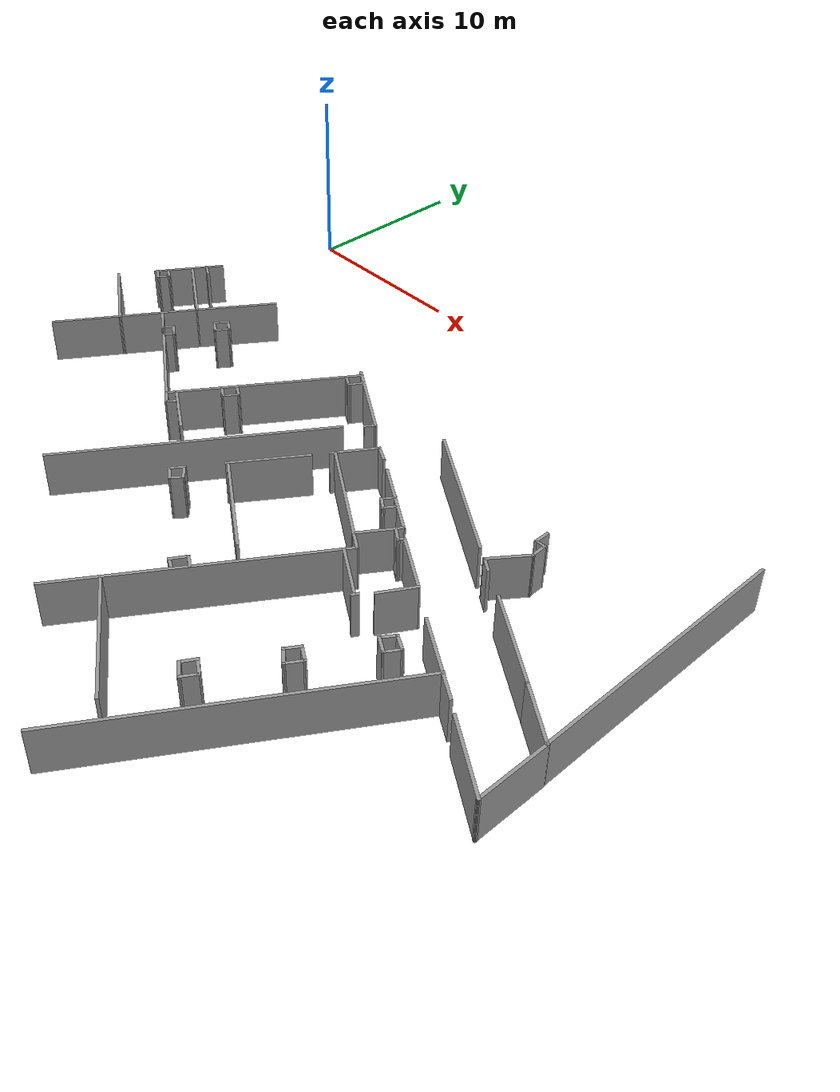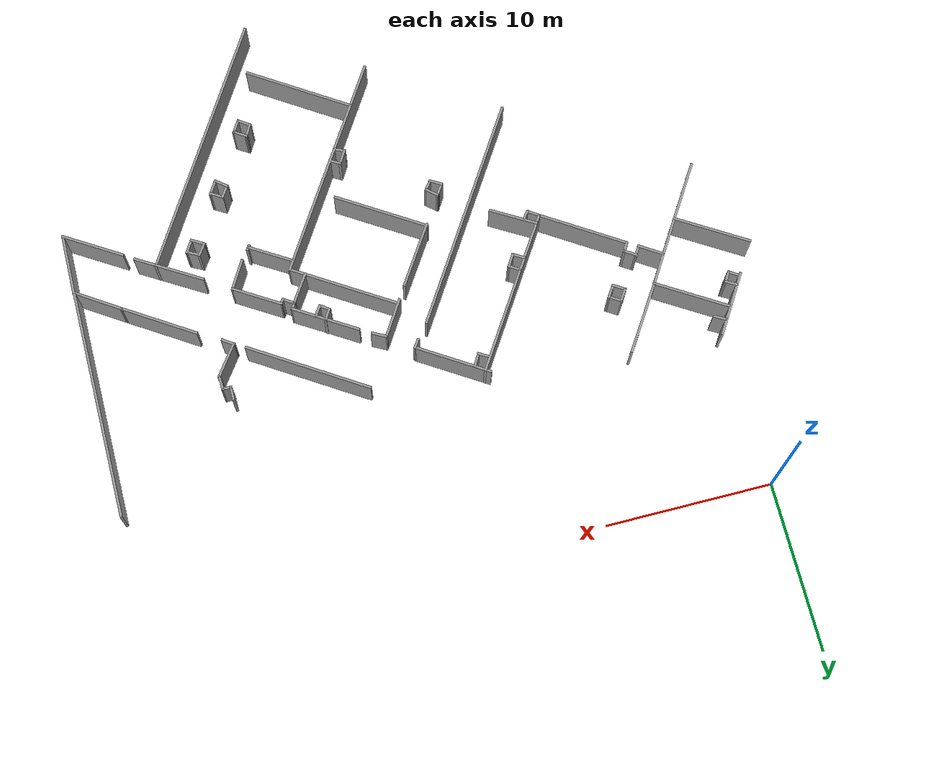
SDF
<sdf version="1.7">
 <model name="HopperFloorGround_Full">
  <pose>0.395792 0.11413 0 0 -0 0</pose>
  <link name="Wall_1">
   <collision name="Wall_1_Collision">
    <geometry><box><size>16.3063 0.15 2.5</size></box></geometry>
    <pose>0 0 1.25 0 -0 0</pose>
   </collision>
   <visual name="Wall_1_Visual">
    <pose>0 0 1.25 0 -0 0</pose>
    <geometry><box><size>16.3063 0.15 2.5</size></box></geometry>
    <material>
     <script><uri>file://media/materials/scripts/gazebo.material</uri><name>Gazebo/Grey</name></script>
     <ambient>1 1 1 1</ambient>
    </material>
    <meta><layer>0</layer></meta>
   </visual>
   <pose>27.2284 -28.2428 0 0 -0 1.02013</pose>
  </link>
  <link name="Wall_10">
   <collision name="Wall_10_Collision">
    <geometry><box><size>0.518953 0.15 2.5</size></box></geometry>
    <pose>0 0 1.25 0 -0 0</pose>
   </collision>
   <visual name="Wall_10_Visual">
    <pose>0 0 1.25 0 -0 0</pose>
    <geometry><box><size>0.518953 0.15 2.5</size></box></geometry>
    <material>
     <script><uri>file://media/materials/scripts/gazebo.material</uri><name>Gazebo/Grey</name></script>
     <ambient>1 1 1 1</ambient>
    </material>
    <meta><layer>0</layer></meta>
   </visual>
   <pose>24.1583 -16.8971 0 0 -0 1.02225</pose>
  </link>
  <link name="Wall_12">
   <collision name="Wall_12_Collision">
    <geometry><box><size>4.26067 0.15 2.5</size></box></geometry>
    <pose>0 0 1.25 0 -0 0</pose>
   </collision>
   <visual name="Wall_12_Visual">
    <pose>0 0 1.25 0 -0 0</pose>
    <geometry><box><size>4.26067 0.15 2.5</size></box></geometry>
    <material>
     <script><uri>file://media/materials/scripts/gazebo.material</uri><name>Gazebo/Grey</name></script>
     <ambient>1 1 1 1</ambient>
    </material>
    <meta><layer>0</layer></meta>
   </visual>
   <pose>22.5135 -15.6473 0 0 -0 2.58124</pose>
  </link>
  <link name="Wall_14">
   <collision name="Wall_14_Collision">
    <geometry><box><size>1.0029 0.15 2.5</size></box></geometry>
    <pose>0 0 1.25 0 -0 0</pose>
   </collision>
   <visual name="Wall_14_Visual">
    <pose>0 0 1.25 0 -0 0</pose>
    <geometry><box><size>1.0029 0.15 2.5</size></box></geometry>
    <material>
     <script><uri>file://media/materials/scripts/gazebo.material</uri><name>Gazebo/Grey</name></script>
     <ambient>1 1 1 1</ambient>
    </material>
    <meta><layer>0</layer></meta>
   </visual>
   <pose>19.6794 -13.9165 0 0 -0 2.65043</pose>
  </link>
  <link name="Wall_15">
   <collision name="Wall_15_Collision">
    <geometry><box><size>2.53238 0.15 2.5</size></box></geometry>
    <pose>0 0 1.25 0 -0 0</pose>
   </collision>
   <visual name="Wall_15_Visual">
    <pose>0 0 1.25 0 -0 0</pose>
    <geometry><box><size>2.53238 0.15 2.5</size></box></geometry>
    <material>
     <script><uri>file://media/materials/scripts/gazebo.material</uri><name>Gazebo/Grey</name></script>
     <ambient>1 1 1 1</ambient>
    </material>
    <meta><layer>0</layer></meta>
   </visual>
   <pose>18.665 -14.7211 0 0 -0 -2.1364</pose>
  </link>
  <link name="Wall_17">
   <collision name="Wall_17_Collision">
    <geometry><box><size>4.18126 0.15 2.5</size></box></geometry>
    <pose>0 0 1.25 0 -0 0</pose>
   </collision>
   <visual name="Wall_17_Visual">
    <pose>0 0 1.25 0 -0 0</pose>
    <geometry><box><size>4.18126 0.15 2.5</size></box></geometry>
    <material>
     <script><uri>file://media/materials/scripts/gazebo.material</uri><name>Gazebo/Grey</name></script>
     <ambient>1 1 1 1</ambient>
    </material>
    <meta><layer>0</layer></meta>
   </visual>
   <pose>16.4 -18.2366 0 0 -0 -2.14917</pose>
  </link>
  <link name="Wall_18">
   <collision name="Wall_18_Collision">
    <geometry><box><size>5.9215 0.15 2.5</size></box></geometry>
    <pose>0 0 1.25 0 -0 0</pose>
   </collision>
   <visual name="Wall_18_Visual">
    <pose>0 0 1.25 0 -0 0</pose>
    <geometry><box><size>5.9215 0.15 2.5</size></box></geometry>
    <material>
     <script><uri>file://media/materials/scripts/gazebo.material</uri><name>Gazebo/Grey</name></script>
     <ambient>1 1 1 1</ambient>
    </material>
    <meta><layer>0</layer></meta>
   </visual>
   <pose>17.7293 -21.3954 0 0 -0 -0.568971</pose>
  </link>
  <link name="Wall_181">
   <collision name="Wall_181_Collision">
    <geometry><box><size>4.06223 0.15 2.5</size></box></geometry>
    <pose>0 0 1.25 0 -0 0</pose>
   </collision>
   <visual name="Wall_181_Visual">
    <pose>0 0 1.25 0 -0 0</pose>
    <geometry><box><size>4.06223 0.15 2.5</size></box></geometry>
    <material>
     <script><uri>file://media/materials/scripts/gazebo.material</uri><name>Gazebo/Grey</name></script>
     <ambient>1 1 1 1</ambient>
    </material>
    <meta><layer>0</layer></meta>
   </visual>
   <pose>-0.852842 -10.6822 0 0 -0 -2.13603</pose>
  </link>
  <link name="Wall_186">
   <collision name="Wall_186_Collision">
    <geometry><box><size>0.814062 0.15 2.5</size></box></geometry>
    <pose>0 0 1.25 0 -0 0</pose>
   </collision>
   <visual name="Wall_186_Visual">
    <pose>0 0 1.25 0 -0 0</pose>
    <geometry><box><size>0.814062 0.15 2.5</size></box></geometry>
    <material>
     <script><uri>file://media/materials/scripts/gazebo.material</uri><name>Gazebo/Grey</name></script>
     <ambient>1 1 1 1</ambient>
    </material>
    <meta><layer>0</layer></meta>
   </visual>
   <pose>0.057217 -9.98631 0 0 -0 2.63673</pose>
  </link>
  <link name="Wall_188">
   <collision name="Wall_188_Collision">
    <geometry><box><size>0.777845 0.15 2.5</size></box></geometry>
    <pose>0 0 1.25 0 -0 0</pose>
   </collision>
   <visual name="Wall_188_Visual">
    <pose>0 0 1.25 0 -0 0</pose>
    <geometry><box><size>0.777845 0.15 2.5</size></box></geometry>
    <material>
     <script><uri>file://media/materials/scripts/gazebo.material</uri><name>Gazebo/Grey</name></script>
     <ambient>1 1 1 1</ambient>
    </material>
    <meta><layer>0</layer></meta>
   </visual>
   <pose>-1.51818 -12.4182 0 0 -0 -0.594759</pose>
  </link>
  <link name="Wall_189">
   <collision name="Wall_189_Collision">
    <geometry><box><size>0.790571 0.15 2.5</size></box></geometry>
    <pose>0 0 1.25 0 -0 0</pose>
   </collision>
   <visual name="Wall_189_Visual">
    <pose>0 0 1.25 0 -0 0</pose>
    <geometry><box><size>0.790571 0.15 2.5</size></box></geometry>
    <material>
     <script><uri>file://media/materials/scripts/gazebo.material</uri><name>Gazebo/Grey</name></script>
     <ambient>1 1 1 1</ambient>
    </material>
    <meta><layer>0</layer></meta>
   </visual>
   <pose>-1.08227 -12.3265 0 0 -0 0.989416</pose>
  </link>
  <link name="Wall_190">
   <collision name="Wall_190_Collision">
    <geometry><box><size>0.800717 0.15 2.5</size></box></geometry>
    <pose>0 0 1.25 0 -0 0</pose>
   </collision>
   <visual name="Wall_190_Visual">
    <pose>0 0 1.25 0 -0 0</pose>
    <geometry><box><size>0.800717 0.15 2.5</size></box></geometry>
    <material>
     <script><uri>file://media/materials/scripts/gazebo.material</uri><name>Gazebo/Grey</name></script>
     <ambient>1 1 1 1</ambient>
    </material>
    <meta><layer>0</layer></meta>
   </visual>
   <pose>-1.18934 -11.8982 0 0 -0 2.62536</pose>
  </link>
  <link name="Wall_194">
   <collision name="Wall_194_Collision">
    <geometry><box><size>4.81119 0.15 2.5</size></box></geometry>
    <pose>0 0 1.25 0 -0 0</pose>
   </collision>
   <visual name="Wall_194_Visual">
    <pose>0 0 1.25 0 -0 0</pose>
    <geometry><box><size>4.81119 0.15 2.5</size></box></geometry>
    <material>
     <script><uri>file://media/materials/scripts/gazebo.material</uri><name>Gazebo/Grey</name></script>
     <ambient>1 1 1 1</ambient>
    </material>
    <meta><layer>0</layer></meta>
   </visual>
   <pose>-1.07731 -15.393 0 0 -0 -0.556599</pose>
  </link>
  <link name="Wall_195">
   <collision name="Wall_195_Collision">
    <geometry><box><size>4.45886 0.15 2.5</size></box></geometry>
    <pose>0 0 1.25 0 -0 0</pose>
   </collision>
   <visual name="Wall_195_Visual">
    <pose>0 0 1.25 0 -0 0</pose>
    <geometry><box><size>4.45886 0.15 2.5</size></box></geometry>
    <material>
     <script><uri>file://media/materials/scripts/gazebo.material</uri><name>Gazebo/Grey</name></script>
     <ambient>1 1 1 1</ambient>
    </material>
    <meta><layer>0</layer></meta>
   </visual>
   <pose>2.0536 -14.8038 0 0 -0 1.00657</pose>
  </link>
  <link name="Wall_196">
   <collision name="Wall_196_Collision">
    <geometry><box><size>4.73287 0.15 2.5</size></box></geometry>
    <pose>0 0 1.25 0 -0 0</pose>
   </collision>
   <visual name="Wall_196_Visual">
    <pose>0 0 1.25 0 -0 0</pose>
    <geometry><box><size>4.73287 0.15 2.5</size></box></geometry>
    <material>
     <script><uri>file://media/materials/scripts/gazebo.material</uri><name>Gazebo/Grey</name></script>
     <ambient>1 1 1 1</ambient>
    </material>
    <meta><layer>0</layer></meta>
   </visual>
   <pose>1.26208 -11.7696 0 0 -0 2.5834</pose>
  </link>
  <link name="Wall_198">
   <collision name="Wall_198_Collision">
    <geometry><box><size>4.56994 0.15 2.5</size></box></geometry>
    <pose>0 0 1.25 0 -0 0</pose>
   </collision>
   <visual name="Wall_198_Visual">
    <pose>0 0 1.25 0 -0 0</pose>
    <geometry><box><size>4.56994 0.15 2.5</size></box></geometry>
    <material>
     <script><uri>file://media/materials/scripts/gazebo.material</uri><name>Gazebo/Grey</name></script>
     <ambient>1 1 1 1</ambient>
    </material>
    <meta><layer>0</layer></meta>
   </visual>
   <pose>4.41937 -11.1364 0 0 -0 0.989416</pose>
  </link>
  <link name="Wall_20">
   <collision name="Wall_20_Collision">
    <geometry><box><size>13.9697 0.15 2.5</size></box></geometry>
    <pose>0 0 1.25 0 -0 0</pose>
   </collision>
   <visual name="Wall_20_Visual">
    <pose>0 0 1.25 0 -0 0</pose>
    <geometry><box><size>13.9697 0.15 2.5</size></box></geometry>
    <material>
     <script><uri>file://media/materials/scripts/gazebo.material</uri><name>Gazebo/Grey</name></script>
     <ambient>1 1 1 1</ambient>
    </material>
    <meta><layer>0</layer></meta>
   </visual>
   <pose>20.145 -25.001 0 0 -0 1.0068</pose>
  </link>
  <link name="Wall_204">
   <collision name="Wall_204_Collision">
    <geometry><box><size>0.886657 0.15 2.5</size></box></geometry>
    <pose>0 0 1.25 0 -0 0</pose>
   </collision>
   <visual name="Wall_204_Visual">
    <pose>0 0 1.25 0 -0 0</pose>
    <geometry><box><size>0.886657 0.15 2.5</size></box></geometry>
    <material>
     <script><uri>file://media/materials/scripts/gazebo.material</uri><name>Gazebo/Grey</name></script>
     <ambient>1 1 1 1</ambient>
    </material>
    <meta><layer>0</layer></meta>
   </visual>
   <pose>5.18451 -12.7458 0 0 -0 0.989416</pose>
  </link>
  <link name="Wall_205">
   <collision name="Wall_205_Collision">
    <geometry><box><size>0.901419 0.15 2.5</size></box></geometry>
    <pose>0 0 1.25 0 -0 0</pose>
   </collision>
   <visual name="Wall_205_Visual">
    <pose>0 0 1.25 0 -0 0</pose>
    <geometry><box><size>0.901419 0.15 2.5</size></box></geometry>
    <material>
     <script><uri>file://media/materials/scripts/gazebo.material</uri><name>Gazebo/Grey</name></script>
     <ambient>1 1 1 1</ambient>
    </material>
    <meta><layer>0</layer></meta>
   </visual>
   <pose>5.7034 -12.6403 0 0 -0 -0.568525</pose>
  </link>
  <link name="Wall_206">
   <collision name="Wall_206_Collision">
    <geometry><box><size>0.911033 0.15 2.5</size></box></geometry>
    <pose>0 0 1.25 0 -0 0</pose>
   </collision>
   <visual name="Wall_206_Visual">
    <pose>0 0 1.25 0 -0 0</pose>
    <geometry><box><size>0.911033 0.15 2.5</size></box></geometry>
    <material>
     <script><uri>file://media/materials/scripts/gazebo.material</uri><name>Gazebo/Grey</name></script>
     <ambient>1 1 1 1</ambient>
    </material>
    <meta><layer>0</layer></meta>
   </visual>
   <pose>5.80893 -13.1592 0 0 -0 -2.1588</pose>
  </link>
  <link name="Wall_207">
   <collision name="Wall_207_Collision">
    <geometry><box><size>0.901419 0.15 2.5</size></box></geometry>
    <pose>0 0 1.25 0 -0 0</pose>
   </collision>
   <visual name="Wall_207_Visual">
    <pose>0 0 1.25 0 -0 0</pose>
    <geometry><box><size>0.901419 0.15 2.5</size></box></geometry>
    <material>
     <script><uri>file://media/materials/scripts/gazebo.material</uri><name>Gazebo/Grey</name></script>
     <ambient>1 1 1 1</ambient>
    </material>
    <meta><layer>0</layer></meta>
   </visual>
   <pose>5.28125 -13.2735 0 0 -0 2.57307</pose>
  </link>
  <link name="Wall_209">
   <collision name="Wall_209_Collision">
    <geometry><box><size>1.66238 0.15 2.5</size></box></geometry>
    <pose>0 0 1.25 0 -0 0</pose>
   </collision>
   <visual name="Wall_209_Visual">
    <pose>0 0 1.25 0 -0 0</pose>
    <geometry><box><size>1.66238 0.15 2.5</size></box></geometry>
    <material>
     <script><uri>file://media/materials/scripts/gazebo.material</uri><name>Gazebo/Grey</name></script>
     <ambient>1 1 1 1</ambient>
    </material>
    <meta><layer>0</layer></meta>
   </visual>
   <pose>2.81874 -15.0676 0 0 -0 -0.578325</pose>
  </link>
  <link name="Wall_21">
   <collision name="Wall_21_Collision">
    <geometry><box><size>6.82507 0.15 2.5</size></box></geometry>
    <pose>0 0 1.25 0 -0 0</pose>
   </collision>
   <visual name="Wall_21_Visual">
    <pose>0 0 1.25 0 -0 0</pose>
    <geometry><box><size>6.82507 0.15 2.5</size></box></geometry>
    <material>
     <script><uri>file://media/materials/scripts/gazebo.material</uri><name>Gazebo/Grey</name></script>
     <ambient>1 1 1 1</ambient>
    </material>
    <meta><layer>0</layer></meta>
   </visual>
   <pose>21.0245 -17.3672 0 0 -0 2.57405</pose>
  </link>
  <link name="Wall_210">
   <collision name="Wall_210_Collision">
    <geometry><box><size>0.72617 0.15 2.5</size></box></geometry>
    <pose>0 0 1.25 0 -0 0</pose>
   </collision>
   <visual name="Wall_210_Visual">
    <pose>0 0 1.25 0 -0 0</pose>
    <geometry><box><size>0.72617 0.15 2.5</size></box></geometry>
    <material>
     <script><uri>file://media/materials/scripts/gazebo.material</uri><name>Gazebo/Grey</name></script>
     <ambient>1 1 1 1</ambient>
    </material>
    <meta><layer>0</layer></meta>
   </visual>
   <pose>3.60147 -15.2347 0 0 -0 1.02514</pose>
  </link>
  <link name="Wall_211">
   <collision name="Wall_211_Collision">
    <geometry><box><size>0.877146 0.15 2.5</size></box></geometry>
    <pose>0 0 1.25 0 -0 0</pose>
   </collision>
   <visual name="Wall_211_Visual">
    <pose>0 0 1.25 0 -0 0</pose>
    <geometry><box><size>0.877146 0.15 2.5</size></box></geometry>
    <material>
     <script><uri>file://media/materials/scripts/gazebo.material</uri><name>Gazebo/Grey</name></script>
     <ambient>1 1 1 1</ambient>
    </material>
    <meta><layer>0</layer></meta>
   </visual>
   <pose>4.05879 -15.182 0 0 -0 -0.561163</pose>
  </link>
  <link name="Wall_212">
   <collision name="Wall_212_Collision">
    <geometry><box><size>0.711209 0.15 2.5</size></box></geometry>
    <pose>0 0 1.25 0 -0 0</pose>
   </collision>
   <visual name="Wall_212_Visual">
    <pose>0 0 1.25 0 -0 0</pose>
    <geometry><box><size>0.711209 0.15 2.5</size></box></geometry>
    <material>
     <script><uri>file://media/materials/scripts/gazebo.material</uri><name>Gazebo/Grey</name></script>
     <ambient>1 1 1 1</ambient>
    </material>
    <meta><layer>0</layer></meta>
   </visual>
   <pose>4.2171 -15.6129 0 0 -0 -2.13272</pose>
  </link>
  <link name="Wall_213">
   <collision name="Wall_213_Collision">
    <geometry><box><size>5.6192 0.15 2.5</size></box></geometry>
    <pose>0 0 1.25 0 -0 0</pose>
   </collision>
   <visual name="Wall_213_Visual">
    <pose>0 0 1.25 0 -0 0</pose>
    <geometry><box><size>5.6192 0.15 2.5</size></box></geometry>
    <material>
     <script><uri>file://media/materials/scripts/gazebo.material</uri><name>Gazebo/Grey</name></script>
     <ambient>1 1 1 1</ambient>
    </material>
    <meta><layer>0</layer></meta>
   </visual>
   <pose>6.363 -17.3367 0 0 -0 -0.574623</pose>
  </link>
  <link name="Wall_214">
   <collision name="Wall_214_Collision">
    <geometry><box><size>10.3075 0.15 2.5</size></box></geometry>
    <pose>0 0 1.25 0 -0 0</pose>
   </collision>
   <visual name="Wall_214_Visual">
    <pose>0 0 1.25 0 -0 0</pose>
    <geometry><box><size>10.3075 0.15 2.5</size></box></geometry>
    <material>
     <script><uri>file://media/materials/scripts/gazebo.material</uri><name>Gazebo/Grey</name></script>
     <ambient>1 1 1 1</ambient>
    </material>
    <meta><layer>0</layer></meta>
   </visual>
   <pose>11.4287 -14.5663 0 0 -0 0.99384</pose>
  </link>
  <link name="Wall_217">
   <collision name="Wall_217_Collision">
    <geometry><box><size>4.78533 0.15 2.5</size></box></geometry>
    <pose>0 0 1.25 0 -0 0</pose>
   </collision>
   <visual name="Wall_217_Visual">
    <pose>0 0 1.25 0 -0 0</pose>
    <geometry><box><size>4.78533 0.15 2.5</size></box></geometry>
    <material>
     <script><uri>file://media/materials/scripts/gazebo.material</uri><name>Gazebo/Grey</name></script>
     <ambient>1 1 1 1</ambient>
    </material>
    <meta><layer>0</layer></meta>
   </visual>
   <pose>15.8877 -11.4003 0 0 -0 -0.569058</pose>
  </link>
  <link name="Wall_219">
   <collision name="Wall_219_Collision">
    <geometry><box><size>0.657355 0.15 2.5</size></box></geometry>
    <pose>0 0 1.25 0 -0 0</pose>
   </collision>
   <visual name="Wall_219_Visual">
    <pose>0 0 1.25 0 -0 0</pose>
    <geometry><box><size>0.657355 0.15 2.5</size></box></geometry>
    <material>
     <script><uri>file://media/materials/scripts/gazebo.material</uri><name>Gazebo/Grey</name></script>
     <ambient>1 1 1 1</ambient>
    </material>
    <meta><layer>0</layer></meta>
   </visual>
   <pose>17.6994 -12.8602 0 0 -0 -2.1588</pose>
  </link>
  <link name="Wall_221">
   <collision name="Wall_221_Collision">
    <geometry><box><size>0.922332 0.15 2.5</size></box></geometry>
    <pose>0 0 1.25 0 -0 0</pose>
   </collision>
   <visual name="Wall_221_Visual">
    <pose>0 0 1.25 0 -0 0</pose>
    <geometry><box><size>0.922332 0.15 2.5</size></box></geometry>
    <material>
     <script><uri>file://media/materials/scripts/gazebo.material</uri><name>Gazebo/Grey</name></script>
     <ambient>1 1 1 1</ambient>
    </material>
    <meta><layer>0</layer></meta>
   </visual>
   <pose>14.5509 -11.0309 0 0 -0 -2.09559</pose>
  </link>
  <link name="Wall_222">
   <collision name="Wall_222_Collision">
    <geometry><box><size>0.843834 0.15 2.5</size></box></geometry>
    <pose>0 0 1.25 0 -0 0</pose>
   </collision>
   <visual name="Wall_222_Visual">
    <pose>0 0 1.25 0 -0 0</pose>
    <geometry><box><size>0.843834 0.15 2.5</size></box></geometry>
    <material>
     <script><uri>file://media/materials/scripts/gazebo.material</uri><name>Gazebo/Grey</name></script>
     <ambient>1 1 1 1</ambient>
    </material>
    <meta><layer>0</layer></meta>
   </visual>
   <pose>14.0584 -11.1892 0 0 -0 2.60987</pose>
  </link>
  <link name="Wall_224">
   <collision name="Wall_224_Collision">
    <geometry><box><size>0.804599 0.15 2.5</size></box></geometry>
    <pose>0 0 1.25 0 -0 0</pose>
   </collision>
   <visual name="Wall_224_Visual">
    <pose>0 0 1.25 0 -0 0</pose>
    <geometry><box><size>0.804599 0.15 2.5</size></box></geometry>
    <material>
     <script><uri>file://media/materials/scripts/gazebo.material</uri><name>Gazebo/Grey</name></script>
     <ambient>1 1 1 1</ambient>
    </material>
    <meta><layer>0</layer></meta>
   </visual>
   <pose>10.9626 -15.9823 0 0 -0 -0.535811</pose>
  </link>
  <link name="Wall_225">
   <collision name="Wall_225_Collision">
    <geometry><box><size>0.940544 0.15 2.5</size></box></geometry>
    <pose>0 0 1.25 0 -0 0</pose>
   </collision>
   <visual name="Wall_225_Visual">
    <pose>0 0 1.25 0 -0 0</pose>
    <geometry><box><size>0.940544 0.15 2.5</size></box></geometry>
    <material>
     <script><uri>file://media/materials/scripts/gazebo.material</uri><name>Gazebo/Grey</name></script>
     <ambient>1 1 1 1</ambient>
    </material>
    <meta><layer>0</layer></meta>
   </visual>
   <pose>11.033 -16.4836 0 0 -0 -2.13411</pose>
  </link>
  <link name="Wall_226">
   <collision name="Wall_226_Collision">
    <geometry><box><size>0.828731 0.15 2.5</size></box></geometry>
    <pose>0 0 1.25 0 -0 0</pose>
   </collision>
   <visual name="Wall_226_Visual">
    <pose>0 0 1.25 0 -0 0</pose>
    <geometry><box><size>0.828731 0.15 2.5</size></box></geometry>
    <material>
     <script><uri>file://media/materials/scripts/gazebo.material</uri><name>Gazebo/Grey</name></script>
     <ambient>1 1 1 1</ambient>
    </material>
    <meta><layer>0</layer></meta>
   </visual>
   <pose>10.5317 -16.6419 0 0 -0 2.59673</pose>
  </link>
  <link name="Wall_228">
   <collision name="Wall_228_Collision">
    <geometry><box><size>0.896462 0.15 2.5</size></box></geometry>
    <pose>0 0 1.25 0 -0 0</pose>
   </collision>
   <visual name="Wall_228_Visual">
    <pose>0 0 1.25 0 -0 0</pose>
    <geometry><box><size>0.896462 0.15 2.5</size></box></geometry>
    <material>
     <script><uri>file://media/materials/scripts/gazebo.material</uri><name>Gazebo/Grey</name></script>
     <ambient>1 1 1 1</ambient>
    </material>
    <meta><layer>0</layer></meta>
   </visual>
   <pose>8.96623 -19.034 0 0 -0 -0.601074</pose>
  </link>
  <link name="Wall_229">
   <collision name="Wall_229_Collision">
    <geometry><box><size>0.614373 0.15 2.5</size></box></geometry>
    <pose>0 0 1.25 0 -0 0</pose>
   </collision>
   <visual name="Wall_229_Visual">
    <pose>0 0 1.25 0 -0 0</pose>
    <geometry><box><size>0.614373 0.15 2.5</size></box></geometry>
    <material>
     <script><uri>file://media/materials/scripts/gazebo.material</uri><name>Gazebo/Grey</name></script>
     <ambient>1 1 1 1</ambient>
    </material>
    <meta><layer>0</layer></meta>
   </visual>
   <pose>9.41476 -19.0604 0 0 -0 0.91972</pose>
  </link>
  <link name="Wall_23">
   <collision name="Wall_23_Collision">
    <geometry><box><size>0.813752 0.15 2.5</size></box></geometry>
    <pose>0 0 1.25 0 -0 0</pose>
   </collision>
   <visual name="Wall_23_Visual">
    <pose>0 0 1.25 0 -0 0</pose>
    <geometry><box><size>0.813752 0.15 2.5</size></box></geometry>
    <material>
     <script><uri>file://media/materials/scripts/gazebo.material</uri><name>Gazebo/Grey</name></script>
     <ambient>1 1 1 1</ambient>
    </material>
    <meta><layer>0</layer></meta>
   </visual>
   <pose>22.3261 -15.8897 0 0 -0 -2.1294</pose>
  </link>
  <link name="Wall_231">
   <collision name="Wall_231_Collision">
    <geometry><box><size>2.98866 0.15 2.5</size></box></geometry>
    <pose>0 0 1.25 0 -0 0</pose>
   </collision>
   <visual name="Wall_231_Visual">
    <pose>0 0 1.25 0 -0 0</pose>
    <geometry><box><size>2.98866 0.15 2.5</size></box></geometry>
    <material>
     <script><uri>file://media/materials/scripts/gazebo.material</uri><name>Gazebo/Grey</name></script>
     <ambient>1 1 1 1</ambient>
    </material>
    <meta><layer>0</layer></meta>
   </visual>
   <pose>10.1799 -19.122 0 0 -0 -0.532981</pose>
  </link>
  <link name="Wall_233">
   <collision name="Wall_233_Collision">
    <geometry><box><size>14.5973 0.15 2.5</size></box></geometry>
    <pose>0 0 1.25 0 -0 0</pose>
   </collision>
   <visual name="Wall_233_Visual">
    <pose>0 0 1.25 0 -0 0</pose>
    <geometry><box><size>14.5973 0.15 2.5</size></box></geometry>
    <material>
     <script><uri>file://media/materials/scripts/gazebo.material</uri><name>Gazebo/Grey</name></script>
     <ambient>1 1 1 1</ambient>
    </material>
    <meta><layer>0</layer></meta>
   </visual>
   <pose>12.9141 -20.0381 0 0 -0 0.999331</pose>
  </link>
  <link name="Wall_235">
   <collision name="Wall_235_Collision">
    <geometry><box><size>0.883834 0.15 2.5</size></box></geometry>
    <pose>0 0 1.25 0 -0 0</pose>
   </collision>
   <visual name="Wall_235_Visual">
    <pose>0 0 1.25 0 -0 0</pose>
    <geometry><box><size>0.883834 0.15 2.5</size></box></geometry>
    <material>
     <script><uri>file://media/materials/scripts/gazebo.material</uri><name>Gazebo/Grey</name></script>
     <ambient>1 1 1 1</ambient>
    </material>
    <meta><layer>0</layer></meta>
   </visual>
   <pose>14.0063 -21.8993 0 0 -0 -2.14717</pose>
  </link>
  <link name="Wall_236">
   <collision name="Wall_236_Collision">
    <geometry><box><size>0.867532 0.15 2.5</size></box></geometry>
    <pose>0 0 1.25 0 -0 0</pose>
   </collision>
   <visual name="Wall_236_Visual">
    <pose>0 0 1.25 0 -0 0</pose>
    <geometry><box><size>0.867532 0.15 2.5</size></box></geometry>
    <material>
     <script><uri>file://media/materials/scripts/gazebo.material</uri><name>Gazebo/Grey</name></script>
     <ambient>1 1 1 1</ambient>
    </material>
    <meta><layer>0</layer></meta>
   </visual>
   <pose>14.1139 -22.3915 0 0 -0 -0.54042</pose>
  </link>
  <link name="Wall_237">
   <collision name="Wall_237_Collision">
    <geometry><box><size>0.765279 0.15 2.5</size></box></geometry>
    <pose>0 0 1.25 0 -0 0</pose>
   </collision>
   <visual name="Wall_237_Visual">
    <pose>0 0 1.25 0 -0 0</pose>
    <geometry><box><size>0.765279 0.15 2.5</size></box></geometry>
    <material>
     <script><uri>file://media/materials/scripts/gazebo.material</uri><name>Gazebo/Grey</name></script>
     <ambient>1 1 1 1</ambient>
    </material>
    <meta><layer>0</layer></meta>
   </visual>
   <pose>14.6062 -22.33 0 0 -0 0.927295</pose>
  </link>
  <link name="Wall_238">
   <collision name="Wall_238_Collision">
    <geometry><box><size>0.91416 0.15 2.5</size></box></geometry>
    <pose>0 0 1.25 0 -0 0</pose>
   </collision>
   <visual name="Wall_238_Visual">
    <pose>0 0 1.25 0 -0 0</pose>
    <geometry><box><size>0.91416 0.15 2.5</size></box></geometry>
    <material>
     <script><uri>file://media/materials/scripts/gazebo.material</uri><name>Gazebo/Grey</name></script>
     <ambient>1 1 1 1</ambient>
    </material>
    <meta><layer>0</layer></meta>
   </visual>
   <pose>14.4985 -21.8377 0 0 -0 2.4417</pose>
  </link>
  <link name="Wall_24">
   <collision name="Wall_24_Collision">
    <geometry><box><size>0.755238 0.15 2.5</size></box></geometry>
    <pose>0 0 1.25 0 -0 0</pose>
   </collision>
   <visual name="Wall_24_Visual">
    <pose>0 0 1.25 0 -0 0</pose>
    <geometry><box><size>0.755238 0.15 2.5</size></box></geometry>
    <material>
     <script><uri>file://media/materials/scripts/gazebo.material</uri><name>Gazebo/Grey</name></script>
     <ambient>1 1 1 1</ambient>
    </material>
    <meta><layer>0</layer></meta>
   </visual>
   <pose>22.3964 -16.347 0 0 -0 -0.620249</pose>
  </link>
  <link name="Wall_240">
   <collision name="Wall_240_Collision">
    <geometry><box><size>0.75 0.15 2.5</size></box></geometry>
    <pose>0 0 1.25 0 -0 0</pose>
   </collision>
   <visual name="Wall_240_Visual">
    <pose>0 0 1.25 0 -0 0</pose>
    <geometry><box><size>0.75 0.15 2.5</size></box></geometry>
    <material>
     <script><uri>file://media/materials/scripts/gazebo.material</uri><name>Gazebo/Grey</name></script>
     <ambient>1 1 1 1</ambient>
    </material>
    <meta><layer>0</layer></meta>
   </visual>
   <pose>19.6378 -25.1641 0 0 -0 2.61799</pose>
  </link>
  <link name="Wall_241">
   <collision name="Wall_241_Collision">
    <geometry><box><size>1 0.15 2.5</size></box></geometry>
    <pose>0 0 1.25 0 -0 0</pose>
   </collision>
   <visual name="Wall_241_Visual">
    <pose>0 0 1.25 0 -0 0</pose>
    <geometry><box><size>1 0.15 2.5</size></box></geometry>
    <material>
     <script><uri>file://media/materials/scripts/gazebo.material</uri><name>Gazebo/Grey</name></script>
     <ambient>1 1 1 1</ambient>
    </material>
    <meta><layer>0</layer></meta>
   </visual>
   <pose>19.1654 -25.3821 0 0 -0 -2.0944</pose>
  </link>
  <link name="Wall_242">
   <collision name="Wall_242_Collision">
    <geometry><box><size>0.745491 0.15 2.5</size></box></geometry>
    <pose>0 0 1.25 0 -0 0</pose>
   </collision>
   <visual name="Wall_242_Visual">
    <pose>0 0 1.25 0 -0 0</pose>
    <geometry><box><size>0.745491 0.15 2.5</size></box></geometry>
    <material>
     <script><uri>file://media/materials/scripts/gazebo.material</uri><name>Gazebo/Grey</name></script>
     <ambient>1 1 1 1</ambient>
    </material>
    <meta><layer>0</layer></meta>
   </visual>
   <pose>19.2253 -25.8705 0 0 -0 -0.416081</pose>
  </link>
  <link name="Wall_244">
   <collision name="Wall_244_Collision">
    <geometry><box><size>0.907395 0.15 2.5</size></box></geometry>
    <pose>0 0 1.25 0 -0 0</pose>
   </collision>
   <visual name="Wall_244_Visual">
    <pose>0 0 1.25 0 -0 0</pose>
    <geometry><box><size>0.907395 0.15 2.5</size></box></geometry>
    <material>
     <script><uri>file://media/materials/scripts/gazebo.material</uri><name>Gazebo/Grey</name></script>
     <ambient>1 1 1 1</ambient>
    </material>
    <meta><layer>0</layer></meta>
   </visual>
   <pose>28.621 -21.6812 0 0 -0 -2.16621</pose>
  </link>
  <link name="Wall_245">
   <collision name="Wall_245_Collision">
    <geometry><box><size>0.947909 0.15 2.5</size></box></geometry>
    <pose>0 0 1.25 0 -0 0</pose>
   </collision>
   <visual name="Wall_245_Visual">
    <pose>0 0 1.25 0 -0 0</pose>
    <geometry><box><size>0.947909 0.15 2.5</size></box></geometry>
    <material>
     <script><uri>file://media/materials/scripts/gazebo.material</uri><name>Gazebo/Grey</name></script>
     <ambient>1 1 1 1</ambient>
    </material>
    <meta><layer>0</layer></meta>
   </visual>
   <pose>28.7525 -22.197 0 0 -0 -0.531724</pose>
  </link>
  <link name="Wall_246">
   <collision name="Wall_246_Collision">
    <geometry><box><size>0.930541 0.15 2.5</size></box></geometry>
    <pose>0 0 1.25 0 -0 0</pose>
   </collision>
   <visual name="Wall_246_Visual">
    <pose>0 0 1.25 0 -0 0</pose>
    <geometry><box><size>0.930541 0.15 2.5</size></box></geometry>
    <material>
     <script><uri>file://media/materials/scripts/gazebo.material</uri><name>Gazebo/Grey</name></script>
     <ambient>1 1 1 1</ambient>
    </material>
    <meta><layer>0</layer></meta>
   </visual>
   <pose>29.2986 -22.0656 0 0 -0 1.02593</pose>
  </link>
  <link name="Wall_247">
   <collision name="Wall_247_Collision">
    <geometry><box><size>0.882961 0.15 2.5</size></box></geometry>
    <pose>0 0 1.25 0 -0 0</pose>
   </collision>
   <visual name="Wall_247_Visual">
    <pose>0 0 1.25 0 -0 0</pose>
    <geometry><box><size>0.882961 0.15 2.5</size></box></geometry>
    <material>
     <script><uri>file://media/materials/scripts/gazebo.material</uri><name>Gazebo/Grey</name></script>
     <ambient>1 1 1 1</ambient>
    </material>
    <meta><layer>0</layer></meta>
   </visual>
   <pose>29.1773 -21.5599 0 0 -0 2.65326</pose>
  </link>
  <link name="Wall_249">
   <collision name="Wall_249_Collision">
    <geometry><box><size>0.8683 0.15 2.5</size></box></geometry>
    <pose>0 0 1.25 0 -0 0</pose>
   </collision>
   <visual name="Wall_249_Visual">
    <pose>0 0 1.25 0 -0 0</pose>
    <geometry><box><size>0.8683 0.15 2.5</size></box></geometry>
    <material>
     <script><uri>file://media/materials/scripts/gazebo.material</uri><name>Gazebo/Grey</name></script>
     <ambient>1 1 1 1</ambient>
    </material>
    <meta><layer>0</layer></meta>
   </visual>
   <pose>26.4971 -24.9682 0 0 -0 -2.13537</pose>
  </link>
  <link name="Wall_25">
   <collision name="Wall_25_Collision">
    <geometry><box><size>0.784194 0.15 2.5</size></box></geometry>
    <pose>0 0 1.25 0 -0 0</pose>
   </collision>
   <visual name="Wall_25_Visual">
    <pose>0 0 1.25 0 -0 0</pose>
    <geometry><box><size>0.784194 0.15 2.5</size></box></geometry>
    <material>
     <script><uri>file://media/materials/scripts/gazebo.material</uri><name>Gazebo/Grey</name></script>
     <ambient>1 1 1 1</ambient>
    </material>
    <meta><layer>0</layer></meta>
   </visual>
   <pose>22.8186 -16.2591 0 0 -0 0.982794</pose>
  </link>
  <link name="Wall_250">
   <collision name="Wall_250_Collision">
    <geometry><box><size>0.927126 0.15 2.5</size></box></geometry>
    <pose>0 0 1.25 0 -0 0</pose>
   </collision>
   <visual name="Wall_250_Visual">
    <pose>0 0 1.25 0 -0 0</pose>
    <geometry><box><size>0.927126 0.15 2.5</size></box></geometry>
    <material>
     <script><uri>file://media/materials/scripts/gazebo.material</uri><name>Gazebo/Grey</name></script>
     <ambient>1 1 1 1</ambient>
    </material>
    <meta><layer>0</layer></meta>
   </visual>
   <pose>26.6083 -25.5144 0 0 -0 -0.674741</pose>
  </link>
  <link name="Wall_251">
   <collision name="Wall_251_Collision">
    <geometry><box><size>1.00341 0.15 2.5</size></box></geometry>
    <pose>0 0 1.25 0 -0 0</pose>
   </collision>
   <visual name="Wall_251_Visual">
    <pose>0 0 1.25 0 -0 0</pose>
    <geometry><box><size>1.00341 0.15 2.5</size></box></geometry>
    <material>
     <script><uri>file://media/materials/scripts/gazebo.material</uri><name>Gazebo/Grey</name></script>
     <ambient>1 1 1 1</ambient>
    </material>
    <meta><layer>0</layer></meta>
   </visual>
   <pose>27.1343 -25.393 0 0 -0 1.02225</pose>
  </link>
  <link name="Wall_252">
   <collision name="Wall_252_Collision">
    <geometry><box><size>0.902789 0.15 2.5</size></box></geometry>
    <pose>0 0 1.25 0 -0 0</pose>
   </collision>
   <visual name="Wall_252_Visual">
    <pose>0 0 1.25 0 -0 0</pose>
    <geometry><box><size>0.902789 0.15 2.5</size></box></geometry>
    <material>
     <script><uri>file://media/materials/scripts/gazebo.material</uri><name>Gazebo/Grey</name></script>
     <ambient>1 1 1 1</ambient>
    </material>
    <meta><layer>0</layer></meta>
   </visual>
   <pose>27.0331 -24.8368 0 0 -0 2.60578</pose>
  </link>
  <link name="Wall_254">
   <collision name="Wall_254_Collision">
    <geometry><box><size>0.892666 0.15 2.5</size></box></geometry>
    <pose>0 0 1.25 0 -0 0</pose>
   </collision>
   <visual name="Wall_254_Visual">
    <pose>0 0 1.25 0 -0 0</pose>
    <geometry><box><size>0.892666 0.15 2.5</size></box></geometry>
    <material>
     <script><uri>file://media/materials/scripts/gazebo.material</uri><name>Gazebo/Grey</name></script>
     <ambient>1 1 1 1</ambient>
    </material>
    <meta><layer>0</layer></meta>
   </visual>
   <pose>24.2822 -28.4879 0 0 -0 -2.08319</pose>
  </link>
  <link name="Wall_255">
   <collision name="Wall_255_Collision">
    <geometry><box><size>0.918922 0.15 2.5</size></box></geometry>
    <pose>0 0 1.25 0 -0 0</pose>
   </collision>
   <visual name="Wall_255_Visual">
    <pose>0 0 1.25 0 -0 0</pose>
    <geometry><box><size>0.918922 0.15 2.5</size></box></geometry>
    <material>
     <script><uri>file://media/materials/scripts/gazebo.material</uri><name>Gazebo/Grey</name></script>
     <ambient>1 1 1 1</ambient>
    </material>
    <meta><layer>0</layer></meta>
   </visual>
   <pose>24.4136 -29.034 0 0 -0 -0.617191</pose>
  </link>
  <link name="Wall_256">
   <collision name="Wall_256_Collision">
    <geometry><box><size>0.930541 0.15 2.5</size></box></geometry>
    <pose>0 0 1.25 0 -0 0</pose>
   </collision>
   <visual name="Wall_256_Visual">
    <pose>0 0 1.25 0 -0 0</pose>
    <geometry><box><size>0.930541 0.15 2.5</size></box></geometry>
    <material>
     <script><uri>file://media/materials/scripts/gazebo.material</uri><name>Gazebo/Grey</name></script>
     <ambient>1 1 1 1</ambient>
    </material>
    <meta><layer>0</layer></meta>
   </visual>
   <pose>24.9294 -28.9228 0 0 -0 1.02593</pose>
  </link>
  <link name="Wall_257">
   <collision name="Wall_257_Collision">
    <geometry><box><size>0.941214 0.15 2.5</size></box></geometry>
    <pose>0 0 1.25 0 -0 0</pose>
   </collision>
   <visual name="Wall_257_Visual">
    <pose>0 0 1.25 0 -0 0</pose>
    <geometry><box><size>0.941214 0.15 2.5</size></box></geometry>
    <material>
     <script><uri>file://media/materials/scripts/gazebo.material</uri><name>Gazebo/Grey</name></script>
     <ambient>1 1 1 1</ambient>
    </material>
    <meta><layer>0</layer></meta>
   </visual>
   <pose>24.798 -28.3766 0 0 -0 2.57486</pose>
  </link>
  <link name="Wall_259">
   <collision name="Wall_259_Collision">
    <geometry><box><size>14 0.15 2.5</size></box></geometry>
    <pose>0 0 1.25 0 -0 0</pose>
   </collision>
   <visual name="Wall_259_Visual">
    <pose>0 0 1.25 0 -0 0</pose>
    <geometry><box><size>14 0.15 2.5</size></box></geometry>
    <material>
     <script><uri>file://media/materials/scripts/gazebo.material</uri><name>Gazebo/Grey</name></script>
     <ambient>1 1 1 1</ambient>
    </material>
    <meta><layer>0</layer></meta>
   </visual>
   <pose>36.4807 -13.966 0 0 -0 1.5708</pose>
  </link>
  <link name="Wall_261">
   <collision name="Wall_261_Collision">
    <geometry><box><size>2.28231 0.15 2.5</size></box></geometry>
    <pose>0 0 1.25 0 -0 0</pose>
   </collision>
   <visual name="Wall_261_Visual">
    <pose>0 0 1.25 0 -0 0</pose>
    <geometry><box><size>2.28231 0.15 2.5</size></box></geometry>
    <material>
     <script><uri>file://media/materials/scripts/gazebo.material</uri><name>Gazebo/Grey</name></script>
     <ambient>1 1 1 1</ambient>
    </material>
    <meta><layer>0</layer></meta>
   </visual>
   <pose>28.6808 -14.6108 0 0 -0 0.950645</pose>
  </link>
  <link name="Wall_262">
   <collision name="Wall_262_Collision">
    <geometry><box><size>0.945934 0.15 2.5</size></box></geometry>
    <pose>0 0 1.25 0 -0 0</pose>
   </collision>
   <visual name="Wall_262_Visual">
    <pose>0 0 1.25 0 -0 0</pose>
    <geometry><box><size>0.945934 0.15 2.5</size></box></geometry>
    <material>
     <script><uri>file://media/materials/scripts/gazebo.material</uri><name>Gazebo/Grey</name></script>
     <ambient>1 1 1 1</ambient>
    </material>
    <meta><layer>0</layer></meta>
   </visual>
   <pose>29.2851 -13.3455 0 0 -0 1.60924</pose>
  </link>
  <link name="Wall_263">
   <collision name="Wall_263_Collision">
    <geometry><box><size>0.624395 0.15 2.5</size></box></geometry>
    <pose>0 0 1.25 0 -0 0</pose>
   </collision>
   <visual name="Wall_263_Visual">
    <pose>0 0 1.25 0 -0 0</pose>
    <geometry><box><size>0.624395 0.15 2.5</size></box></geometry>
    <material>
     <script><uri>file://media/materials/scripts/gazebo.material</uri><name>Gazebo/Grey</name></script>
     <ambient>1 1 1 1</ambient>
    </material>
    <meta><layer>0</layer></meta>
   </visual>
   <pose>29.0327 -12.9478 0 0 -0 3.14159</pose>
  </link>
  <link name="Wall_264">
   <collision name="Wall_264_Collision">
    <geometry><box><size>0.86887 0.15 2.5</size></box></geometry>
    <pose>0 0 1.25 0 -0 0</pose>
   </collision>
   <visual name="Wall_264_Visual">
    <pose>0 0 1.25 0 -0 0</pose>
    <geometry><box><size>0.86887 0.15 2.5</size></box></geometry>
    <material>
     <script><uri>file://media/materials/scripts/gazebo.material</uri><name>Gazebo/Grey</name></script>
     <ambient>1 1 1 1</ambient>
    </material>
    <meta><layer>0</layer></meta>
   </visual>
   <pose>28.7956 -12.5884 0 0 -0 1.5708</pose>
  </link>
  <link name="Wall_27">
   <collision name="Wall_27_Collision">
    <geometry><box><size>1.98379 0.15 2.5</size></box></geometry>
    <pose>0 0 1.25 0 -0 0</pose>
   </collision>
   <visual name="Wall_27_Visual">
    <pose>0 0 1.25 0 -0 0</pose>
    <geometry><box><size>1.98379 0.15 2.5</size></box></geometry>
    <material>
     <script><uri>file://media/materials/scripts/gazebo.material</uri><name>Gazebo/Grey</name></script>
     <ambient>1 1 1 1</ambient>
    </material>
    <meta><layer>0</layer></meta>
   </visual>
   <pose>23.5307 -17.8849 0 0 -0 0.99602</pose>
  </link>
  <link name="Wall_29">
   <collision name="Wall_29_Collision">
    <geometry><box><size>2.90684 0.15 2.5</size></box></geometry>
    <pose>0 0 1.25 0 -0 0</pose>
   </collision>
   <visual name="Wall_29_Visual">
    <pose>0 0 1.25 0 -0 0</pose>
    <geometry><box><size>2.90684 0.15 2.5</size></box></geometry>
    <material>
     <script><uri>file://media/materials/scripts/gazebo.material</uri><name>Gazebo/Grey</name></script>
     <ambient>1 1 1 1</ambient>
    </material>
    <meta><layer>0</layer></meta>
   </visual>
   <pose>24.7287 -20.3947 0 0 -0 -0.554564</pose>
  </link>
  <link name="Wall_33">
   <collision name="Wall_33_Collision">
    <geometry><box><size>3.943 0.15 2.5</size></box></geometry>
    <pose>0 0 1.25 0 -0 0</pose>
   </collision>
   <visual name="Wall_33_Visual">
    <pose>0 0 1.25 0 -0 0</pose>
    <geometry><box><size>3.943 0.15 2.5</size></box></geometry>
    <material>
     <script><uri>file://media/materials/scripts/gazebo.material</uri><name>Gazebo/Grey</name></script>
     <ambient>1 1 1 1</ambient>
    </material>
    <meta><layer>0</layer></meta>
   </visual>
   <pose>34.85 -23.5163 0 0 -0 -0.559246</pose>
  </link>
  <link name="Wall_34">
   <collision name="Wall_34_Collision">
    <geometry><box><size>3.75867 0.15 2.5</size></box></geometry>
    <pose>0 0 1.25 0 -0 0</pose>
   </collision>
   <visual name="Wall_34_Visual">
    <pose>0 0 1.25 0 -0 0</pose>
    <geometry><box><size>3.75867 0.15 2.5</size></box></geometry>
    <material>
     <script><uri>file://media/materials/scripts/gazebo.material</uri><name>Gazebo/Grey</name></script>
     <ambient>1 1 1 1</ambient>
    </material>
    <meta><layer>0</layer></meta>
   </visual>
   <pose>36.4807 -22.7183 0 0 -0 1.55798</pose>
  </link>
  <link name="Wall_35">
   <collision name="Wall_35_Collision">
    <geometry><box><size>3.17162 0.15 2.5</size></box></geometry>
    <pose>0 0 1.25 0 -0 0</pose>
   </collision>
   <visual name="Wall_35_Visual">
    <pose>0 0 1.25 0 -0 0</pose>
    <geometry><box><size>3.17162 0.15 2.5</size></box></geometry>
    <material>
     <script><uri>file://media/materials/scripts/gazebo.material</uri><name>Gazebo/Grey</name></script>
     <ambient>1 1 1 1</ambient>
    </material>
    <meta><layer>0</layer></meta>
   </visual>
   <pose>35.2201 -20.0583 0 0 -0 2.55784</pose>
  </link>
  <link name="Wall_37">
   <collision name="Wall_37_Collision">
    <geometry><box><size>4.83359 0.15 2.5</size></box></geometry>
    <pose>0 0 1.25 0 -0 0</pose>
   </collision>
   <visual name="Wall_37_Visual">
    <pose>0 0 1.25 0 -0 0</pose>
    <geometry><box><size>4.83359 0.15 2.5</size></box></geometry>
    <material>
     <script><uri>file://media/materials/scripts/gazebo.material</uri><name>Gazebo/Grey</name></script>
     <ambient>1 1 1 1</ambient>
    </material>
    <meta><layer>0</layer></meta>
   </visual>
   <pose>31.9934 -17.9534 0 0 -0 2.56729</pose>
  </link>
  <link name="Wall_39">
   <collision name="Wall_39_Collision">
    <geometry><box><size>0.849295 0.15 2.5</size></box></geometry>
    <pose>0 0 1.25 0 -0 0</pose>
   </collision>
   <visual name="Wall_39_Visual">
    <pose>0 0 1.25 0 -0 0</pose>
    <geometry><box><size>0.849295 0.15 2.5</size></box></geometry>
    <material>
     <script><uri>file://media/materials/scripts/gazebo.material</uri><name>Gazebo/Grey</name></script>
     <ambient>1 1 1 1</ambient>
    </material>
    <meta><layer>0</layer></meta>
   </visual>
   <pose>28.3503 -15.675 0 0 -0 2.54442</pose>
  </link>
  <link name="Wall_4">
   <collision name="Wall_4_Collision">
    <geometry><box><size>0.39298 0.15 2.5</size></box></geometry>
    <pose>0 0 1.25 0 -0 0</pose>
   </collision>
   <visual name="Wall_4_Visual">
    <pose>0 0 1.25 0 -0 0</pose>
    <geometry><box><size>0.39298 0.15 2.5</size></box></geometry>
    <material>
     <script><uri>file://media/materials/scripts/gazebo.material</uri><name>Gazebo/Grey</name></script>
     <ambient>1 1 1 1</ambient>
    </material>
    <meta><layer>0</layer></meta>
   </visual>
   <pose>25.9248 -21.1122 0 0 -0 1.04272</pose>
  </link>
  <link name="Wall_41">
   <collision name="Wall_41_Collision">
    <geometry><box><size>7.79798 0.15 2.5</size></box></geometry>
    <pose>0 0 1.25 0 -0 0</pose>
   </collision>
   <visual name="Wall_41_Visual">
    <pose>0 0 1.25 0 -0 0</pose>
    <geometry><box><size>7.79798 0.15 2.5</size></box></geometry>
    <material>
     <script><uri>file://media/materials/scripts/gazebo.material</uri><name>Gazebo/Grey</name></script>
     <ambient>1 1 1 1</ambient>
    </material>
    <meta><layer>0</layer></meta>
   </visual>
   <pose>24.1752 -13.015 0 0 -0 2.56953</pose>
  </link>
  <link name="Wall_43">
   <collision name="Wall_43_Collision">
    <geometry><box><size>4.41014 0.15 2.5</size></box></geometry>
    <pose>0 0 1.25 0 -0 0</pose>
   </collision>
   <visual name="Wall_43_Visual">
    <pose>0 0 1.25 0 -0 0</pose>
    <geometry><box><size>4.41014 0.15 2.5</size></box></geometry>
    <material>
     <script><uri>file://media/materials/scripts/gazebo.material</uri><name>Gazebo/Grey</name></script>
     <ambient>1 1 1 1</ambient>
    </material>
    <meta><layer>0</layer></meta>
   </visual>
   <pose>30.7614 -20.9565 0 0 -0 -0.546087</pose>
  </link>
  <link name="Wall_591">
   <collision name="Wall_591_Collision">
    <geometry><box><size>3.81994 0.15 2.5</size></box></geometry>
    <pose>0 0 1.25 0 -0 0</pose>
   </collision>
   <visual name="Wall_591_Visual">
    <pose>0 0 1.25 0 -0 0</pose>
    <geometry><box><size>3.81994 0.15 2.5</size></box></geometry>
    <material>
     <script><uri>file://media/materials/scripts/gazebo.material</uri><name>Gazebo/Grey</name></script>
     <ambient>1 1 1 1</ambient>
    </material>
    <meta><layer>0</layer></meta>
   </visual>
   <pose>-0.089737 -18.1685 0 0 -0 -2.14146</pose>
  </link>
  <link name="Wall_599">
   <collision name="Wall_599_Collision">
    <geometry><box><size>6.74972 0.15 2.5</size></box></geometry>
    <pose>0 0 1.25 0 -0 0</pose>
   </collision>
   <visual name="Wall_599_Visual">
    <pose>0 0 1.25 0 -0 0</pose>
    <geometry><box><size>6.74972 0.15 2.5</size></box></geometry>
    <material>
     <script><uri>file://media/materials/scripts/gazebo.material</uri><name>Gazebo/Grey</name></script>
     <ambient>1 1 1 1</ambient>
    </material>
    <meta><layer>0</layer></meta>
   </visual>
   <pose>20.7217 -30.4114 0 0 -0 2.56159</pose>
  </link>
  <link name="Wall_6">
   <collision name="Wall_6_Collision">
    <geometry><box><size>2 0.15 2.5</size></box></geometry>
    <pose>0 0 1.25 0 -0 0</pose>
   </collision>
   <visual name="Wall_6_Visual">
    <pose>0 0 1.25 0 -0 0</pose>
    <geometry><box><size>2 0.15 2.5</size></box></geometry>
    <material>
     <script><uri>file://media/materials/scripts/gazebo.material</uri><name>Gazebo/Grey</name></script>
     <ambient>1 1 1 1</ambient>
    </material>
    <meta><layer>0</layer></meta>
   </visual>
   <pose>26.9208 -19.6115 0 0 -0 1.0472</pose>
  </link>
  <link name="Wall_7">
   <collision name="Wall_7_Collision">
    <geometry><box><size>3.17579 0.15 2.5</size></box></geometry>
    <pose>0 0 1.25 0 -0 0</pose>
   </collision>
   <visual name="Wall_7_Visual">
    <pose>0 0 1.25 0 -0 0</pose>
    <geometry><box><size>3.17579 0.15 2.5</size></box></geometry>
    <material>
     <script><uri>file://media/materials/scripts/gazebo.material</uri><name>Gazebo/Grey</name></script>
     <ambient>1 1 1 1</ambient>
    </material>
    <meta><layer>0</layer></meta>
   </visual>
   <pose>26.0988 -18.0112 0 0 -0 2.58499</pose>
  </link>
  <link name="Wall_8">
   <collision name="Wall_8_Collision">
    <geometry><box><size>0.441093 0.15 2.5</size></box></geometry>
    <pose>0 0 1.25 0 -0 0</pose>
   </collision>
   <visual name="Wall_8_Visual">
    <pose>0 0 1.25 0 -0 0</pose>
    <geometry><box><size>0.441093 0.15 2.5</size></box></geometry>
    <material>
     <script><uri>file://media/materials/scripts/gazebo.material</uri><name>Gazebo/Grey</name></script>
     <ambient>1 1 1 1</ambient>
    </material>
    <meta><layer>0</layer></meta>
   </visual>
   <pose>24.7355 -17.3343 0 0 -0 -2.14213</pose>
  </link>
  <link name="Wall_9">
   <collision name="Wall_9_Collision">
    <geometry><box><size>0.867945 0.15 2.5</size></box></geometry>
    <pose>0 0 1.25 0 -0 0</pose>
   </collision>
   <visual name="Wall_9_Visual">
    <pose>0 0 1.25 0 -0 0</pose>
    <geometry><box><size>0.867945 0.15 2.5</size></box></geometry>
    <material>
     <script><uri>file://media/materials/scripts/gazebo.material</uri><name>Gazebo/Grey</name></script>
     <ambient>1 1 1 1</ambient>
    </material>
    <meta><layer>0</layer></meta>
   </visual>
   <pose>24.3595 -17.2556 0 0 -0 2.54683</pose>
  </link>
  <static>1</static>
 </model>
</sdf>
